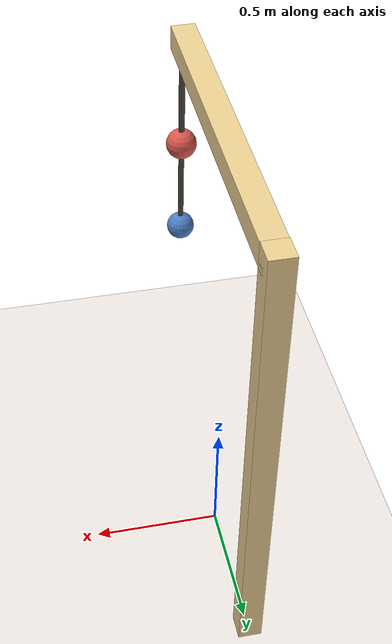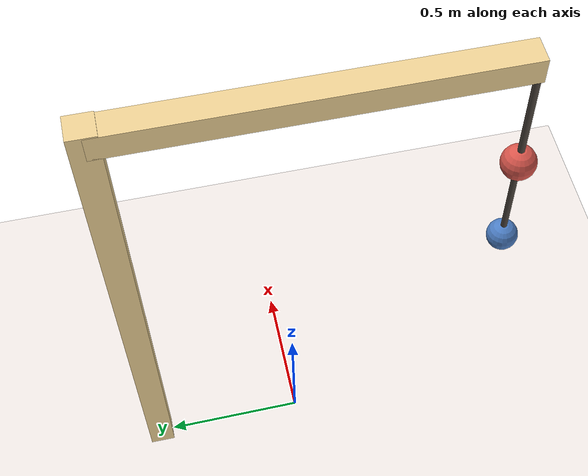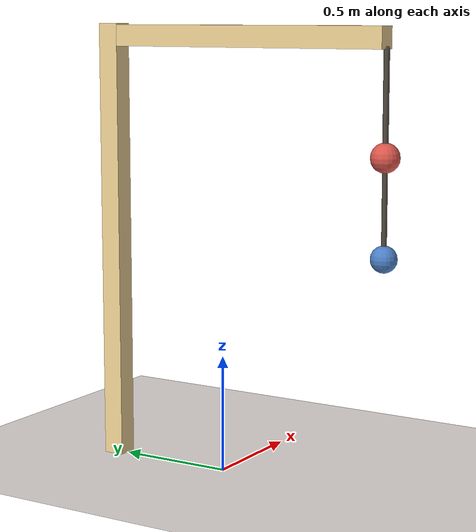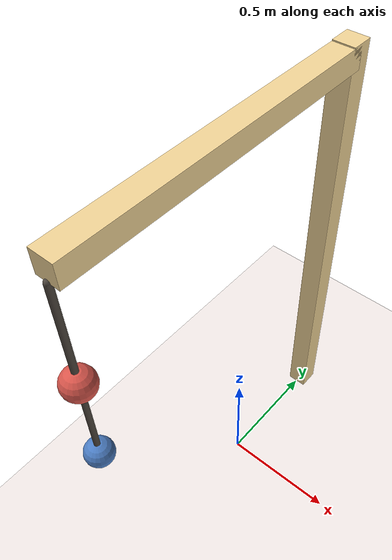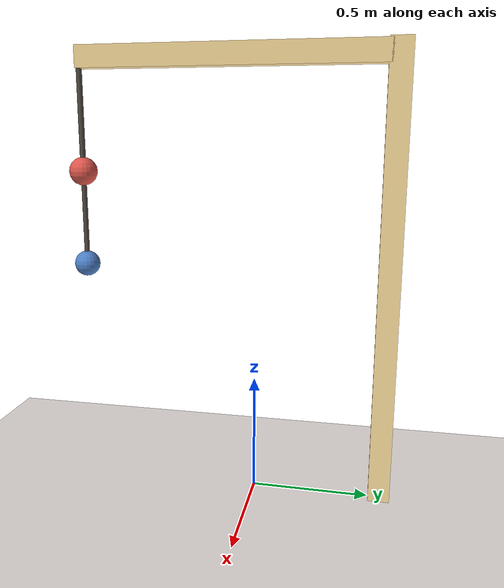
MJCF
<mujoco model="double_pendulum">
  <compiler angle="radian" coordinate="local" autolimits="true"/>
  <option timestep="0.001" gravity="0 0 -9.81" integrator="implicitfast"/>

  <visual>
    <headlight diffuse="0 0 0" ambient="0.50 0.48 0.55" specular="0 0 0"/>
    <rgba haze="0.94 0.91 0.90 1"/>
    <global azimuth="120" elevation="-15" offwidth="1920" offheight="1080" fovy="40"/>
    <quality shadowsize="8192" offsamples="8"/>
    <map shadowclip="6" shadowscale="0.7"/>
  </visual>

  <asset>
    <texture type="skybox" builtin="flat"
             rgb1="0.74 0.68 0.86" rgb2="0.74 0.68 0.86"
             width="512" height="512" mark="none" markrgb="0 0 0"/>

    <material name="floor_mat" rgba="0.94 0.91 0.90 1" specular="0" shininess="0"/>
    <material name="wood" rgba="0.93 0.82 0.58 1" specular="0.1" shininess="0.1"/>
    <material name="rod_mat" rgba="0.30 0.27 0.24 1" specular="0.3" shininess="0.4"/>
    <material name="bob_red" rgba="0.86 0.34 0.30 1" specular="0.4" shininess="0.45"/>
    <material name="bob_blue" rgba="0.30 0.50 0.78 1" specular="0.4" shininess="0.45"/>
  </asset>

  <worldbody>
    <light pos="0 0 12" dir="-0.35 0.55 -1" directional="true" castshadow="true"
           diffuse="0.85 0.82 0.78" specular="0.15 0.15 0.15"/>
    <light pos="0 0 8" dir="0.45 -0.30 -1" directional="true" castshadow="false"
           diffuse="0.30 0.30 0.36" specular="0 0 0"/>

    <geom name="floor" type="plane" size="40 40 0.1" material="floor_mat"/>

    <!-- L-shaped stand: vertical post + horizontal arm toward camera -->
    <geom type="box" size="0.045 0.045 0.95" pos="0 0.55 0.95" material="wood"/>
    <geom type="box" size="0.045 0.65 0.045" pos="0 -0.10 1.85" material="wood"/>

    <!-- Hinge anchor at the tip of the horizontal arm: (0, -0.75, 1.805) -->
    <body name="arm1" pos="0 -0.75 1.805">
      <joint name="h1" type="hinge" axis="0 1 0" damping="0.001"/>
      <geom name="rod1" type="capsule" fromto="0 0 0   0 0 -0.42"
            size="0.012" material="rod_mat" contype="0" conaffinity="0"/>
      <geom name="bob1" type="sphere" pos="0 0 -0.42" size="0.060"
            mass="0.18" material="bob_red" contype="0" conaffinity="0"/>

      <!-- Second arm hinged at the end of arm1 -->
      <body name="arm2" pos="0 0 -0.42">
        <joint name="h2" type="hinge" axis="0 1 0" damping="0.001"/>
        <geom name="rod2" type="capsule" fromto="0 0 0   0 0 -0.40"
              size="0.011" material="rod_mat" contype="0" conaffinity="0"/>
        <geom name="bob2" type="sphere" pos="0 0 -0.40" size="0.055"
              mass="0.15" material="bob_blue" contype="0" conaffinity="0"/>
      </body>
    </body>

    <!-- Camera: 3/4 view aimed near pendulum mid-height so bobs sit in the
         middle of the frame instead of the top.  Looks at (0, 0, 1.3). -->
    <camera name="cam" pos="2.4 -2.6 1.55" fovy="40"
            xyaxes="0.735 0.678 0   -0.038 0.041 0.998"/>
  </worldbody>
</mujoco>
